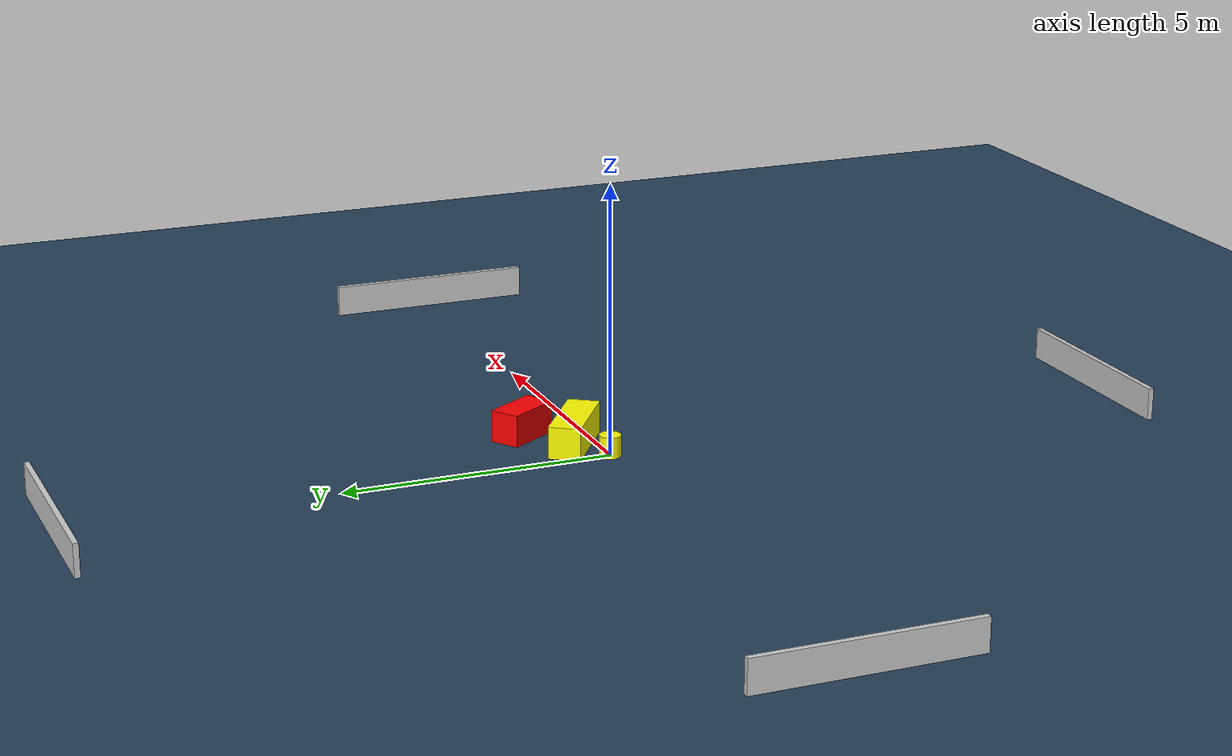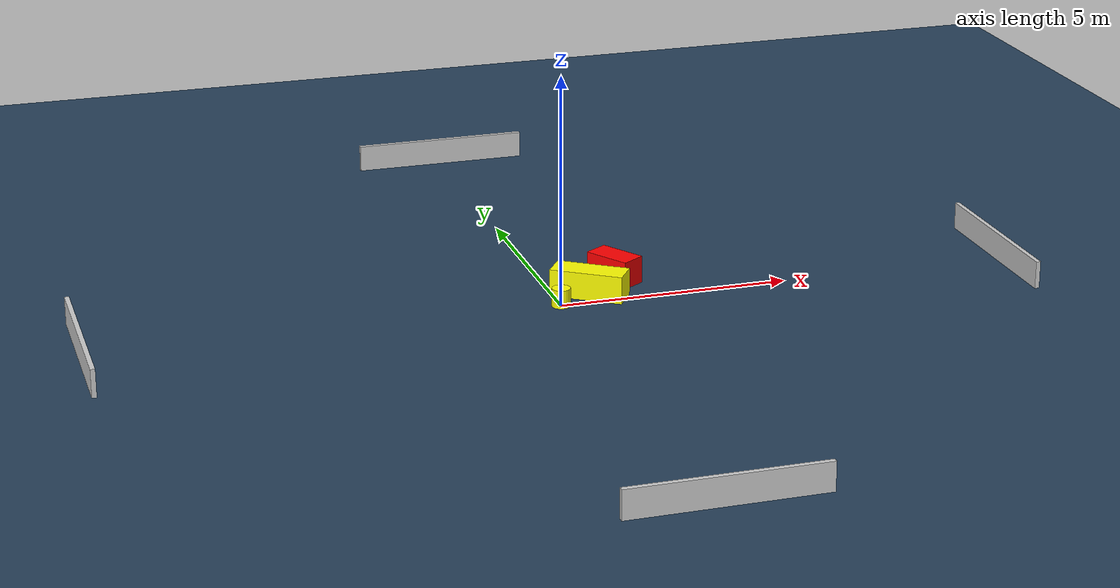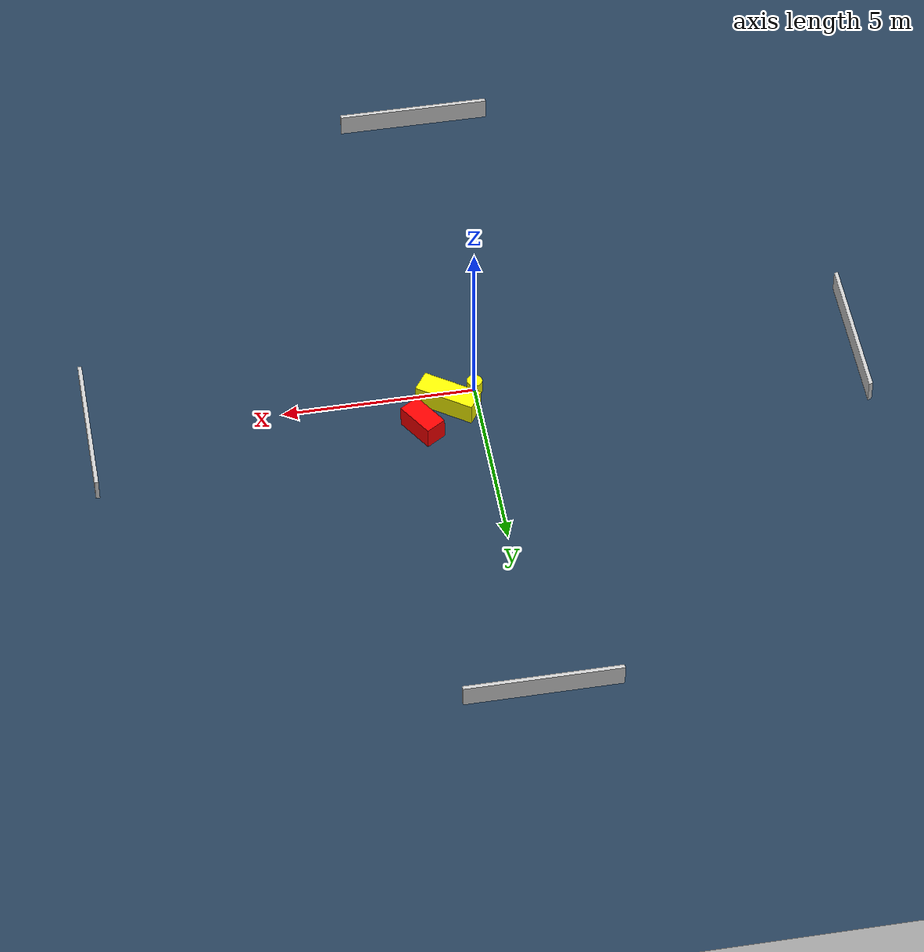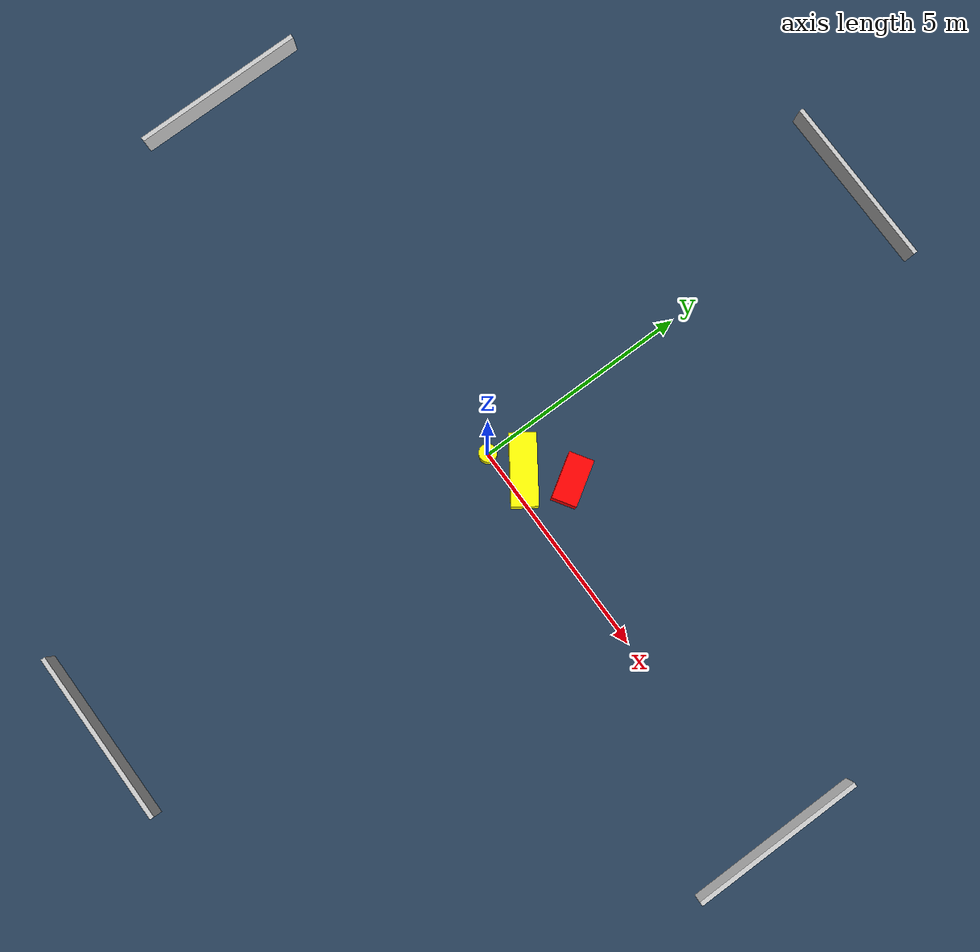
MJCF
<?xml version="1.0" ?>
<mujoco model="generated_environment">
  <option timestep="0.01" integrator="RK4" cone="elliptic"/>
  <default>
    <geom density="1"/>
  </default>
  <asset>
    <texture builtin="gradient" height="3072" name="skybox" rgb1="0.3 0.5 0.7" rgb2="0 0 0" type="skybox" width="512"/>
    <texture builtin="checker" height="300" name="groundplane" rgb1="0.2 0.3 0.4" rgb2="0.1 0.2 0.3" type="2d" width="300"/>
    <material name="groundplane" reflectance="0.2" texrepeat="5 5" texture="groundplane"/>
  </asset>
  <worldbody>
    <light dir="0 0 -1" directional="true" pos="0 0 1.5"/>
    <geom condim="3" friction="0.5 0.005 0.001" material="groundplane" name="floor" pos="0 0 0" size="0 0 0.05" type="plane"/>
    <body name="walls">
      <geom name="wall_1" condim="4" pos="-10.0 0.0 0.3" rgba="0.800000011920929 0.800000011920929 0.800000011920929 1.0" size="0.05 2.0 0.3" type="box"/>
      <geom name="wall_2" condim="4" pos="10.0 0.0 0.3" rgba="0.800000011920929 0.800000011920929 0.800000011920929 1.0" size="0.05 2.0 0.3" type="box"/>
      <geom name="wall_3" condim="4" pos="0.0 -10.0 0.3" rgba="0.800000011920929 0.800000011920929 0.800000011920929 1.0" size="2.0 0.05 0.3" type="box"/>
      <geom name="wall_4" condim="4" pos="0.0 10.0 0.3" rgba="0.800000011920929 0.800000011920929 0.800000011920929 1.0" size="2.0 0.05 0.3" type="box"/>
    </body>
    <body name="robot">
      <joint name="joint_x" type="slide" pos="0 0 0" axis="1 0 0"/>
      <joint name="joint_y" type="slide" pos="0 0 0" axis="0 1 0"/>
      <geom name="robot" type="cylinder" pos="0.0 0.0 0.2" size="0.2 0.2 0.0" mass="5.0" friction="1.0 0.005 0.0001" condim="4" rgba="1.0 1.0 0.0 1.0"/>
    </body>
    <body name="obstacle_1_movable">
      <geom name="obstacle_1_movable" condim="4" pos="0.7499250721001225 0.39188246438971 0.3" euler="0 0 325.4428890787805" friction="0.0 0.005 0.001" rgba="1.0 1.0 0.0 1.0" size="0.7934933384216982 0.2969327410560214 0.3" type="box" mass="0.1"/>
      <joint type="free"/>
    </body>
    <body name="obstacle_2_static">
      <geom name="obstacle_2_static" condim="4" pos="1.535545016691359 1.10353902886162 0.3" euler="0 0 122.21291005223333" friction="0.0 0.005 0.001" rgba="1.0 0.0 0.0 1.0" size="0.5291483757072795 0.2821224141933416 0.3" type="box"/>
    </body>
  </worldbody>
  <actuator>
    <motor name="actuator_x" joint="joint_x" gear="1" ctrlrange="-1 1"/>
    <motor name="actuator_y" joint="joint_y" gear="1" ctrlrange="-1 1"/>
  </actuator>
</mujoco>
